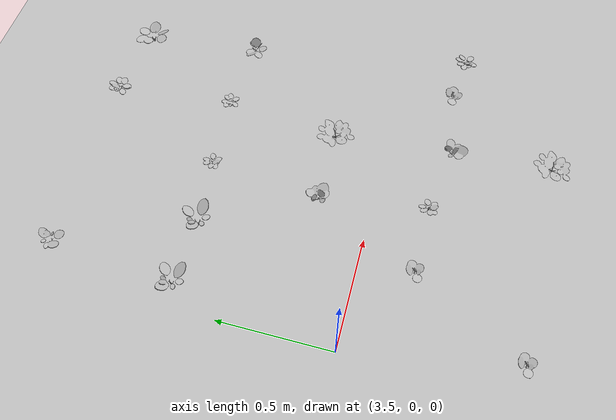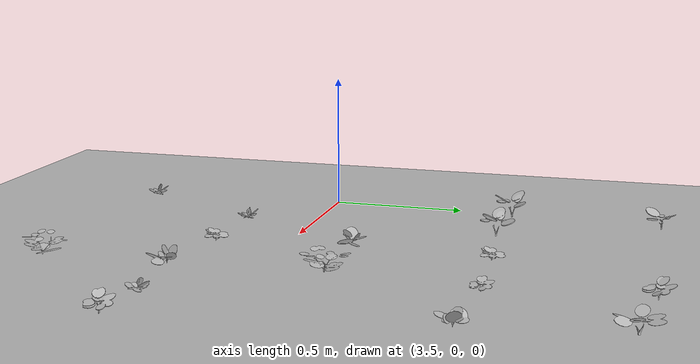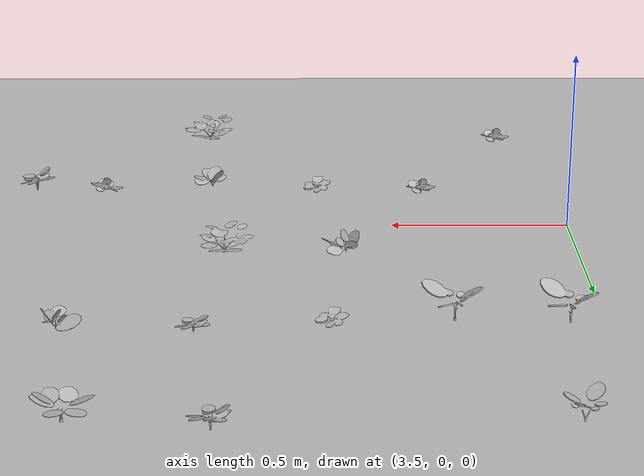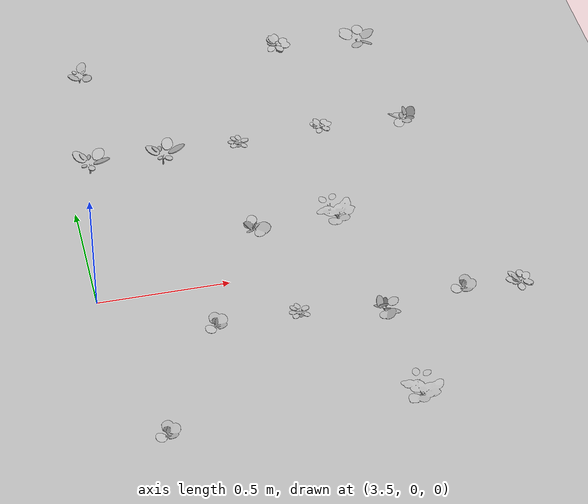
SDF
<sdf version="1.7">
 <world name="default">
  <model name="ground_plane">
   <static>1</static>
   <link name="link">
    <collision name="collision">
     <geometry><plane><normal>0 0 1</normal><size>100 100</size></plane></geometry>
     <surface>
      <contact><collide_bitmask>65535</collide_bitmask></contact>
      <friction><ode><mu>100</mu><mu2>50</mu2></ode></friction>
     </surface>
    </collision>
    <visual name="visual">
     <cast_shadows>0</cast_shadows>
     <geometry><plane><normal>0 0 1</normal><size>100 100</size></plane></geometry>
     <material>
      <ambient>0.2 0.2 0.2 1.0</ambient>
      <diffuse>0.2 0.2 0.2 1.0</diffuse>
      <specular>0.2 0.2 0.2 1.0</specular>
      <emissive>0.2 0.2 0.2 1.0</emissive>
     </material>
    </visual>
   </link>
  </model>
  <model name="ground">
   <pose>5 -0.5 0.01  3.141592654 0 0</pose>
   <static>true</static>
   <link name="body">
    <visual name="visual">
     <cast_shadows>0</cast_shadows>
     <geometry>
      <mesh><uri>file:///home/ifcosta/catkin_ws/src/cnn_line/worlds/models/ground.obj</uri></mesh>
     </geometry>
    </visual>
   </link>
  </model>
  <model name="plt_46">
   <pose>3.63 -0.722 0.0131 0.0 0.0 -0.14927</pose>
   <static>true</static>
   <link name="body">
    <visual name="visual">
     <geometry>
      <mesh><uri>file:///home/ifcosta/catkin_ws/src/cnn_line/worlds/models/plant6.obj</uri></mesh>
     </geometry>
    </visual>
   </link>
  </model>
  <model name="plt_49">
   <pose>4.54 -0.74 0.0166 0.0 0.0 -0.12963</pose>
   <static>true</static>
   <link name="body">
    <visual name="visual">
     <geometry>
      <mesh><uri>file:///home/ifcosta/catkin_ws/src/cnn_line/worlds/models/plant0.obj</uri></mesh>
     </geometry>
    </visual>
   </link>
  </model>
  <model name="plt_81">
   <pose>3.9 -0.234 0.0142 0.0 0.0 0.05486</pose>
   <static>true</static>
   <link name="body">
    <visual name="visual">
     <geometry>
      <mesh><uri>file:///home/ifcosta/catkin_ws/src/cnn_line/worlds/models/plant6.obj</uri></mesh>
     </geometry>
    </visual>
   </link>
  </model>
  <model name="plt_82">
   <pose>4.21 -0.241 0.0144 0.0 0.0 1.3264</pose>
   <static>true</static>
   <link name="body">
    <visual name="visual">
     <geometry>
      <mesh><uri>file:///home/ifcosta/catkin_ws/src/cnn_line/worlds/models/plant4.obj</uri></mesh>
     </geometry>
    </visual>
   </link>
  </model>
  <model name="plt_83">
   <pose>4.52 -0.292 0.0153 0.0 0.0 0.48448</pose>
   <static>true</static>
   <link name="body">
    <visual name="visual">
     <geometry>
      <mesh><uri>file:///home/ifcosta/catkin_ws/src/cnn_line/worlds/models/plant7.obj</uri></mesh>
     </geometry>
    </visual>
   </link>
  </model>
  <model name="plt_84">
   <pose>4.83 -0.242 0.0156 0.0 0.0 -0.48775</pose>
   <static>true</static>
   <link name="body">
    <visual name="visual">
     <geometry>
      <mesh><uri>file:///home/ifcosta/catkin_ws/src/cnn_line/worlds/models/plant6.obj</uri></mesh>
     </geometry>
    </visual>
   </link>
  </model>
  <model name="plt_85">
   <pose>5.04 -0.272 0.013 0.0 0.0 0.30895</pose>
   <static>true</static>
   <link name="body">
    <visual name="visual">
     <geometry>
      <mesh><uri>file:///home/ifcosta/catkin_ws/src/cnn_line/worlds/models/plant5.obj</uri></mesh>
     </geometry>
    </visual>
   </link>
  </model>
  <model name="plt_116">
   <pose>4.14 0.238 0.0131 0.0 0.0 1.5478</pose>
   <static>true</static>
   <link name="body">
    <visual name="visual">
     <geometry>
      <mesh><uri>file:///home/ifcosta/catkin_ws/src/cnn_line/worlds/models/plant7.obj</uri></mesh>
     </geometry>
    </visual>
   </link>
  </model>
  <model name="plt_117">
   <pose>4.47 0.24 0.0148 0.0 0.0 0.42344</pose>
   <static>true</static>
   <link name="body">
    <visual name="visual">
     <geometry>
      <mesh><uri>file:///home/ifcosta/catkin_ws/src/cnn_line/worlds/models/plant0.obj</uri></mesh>
     </geometry>
    </visual>
   </link>
  </model>
  <model name="plt_148">
   <pose>3.61 0.734 0.0126 0.0 0.0 -0.90362</pose>
   <static>true</static>
   <link name="body">
    <visual name="visual">
     <geometry>
      <mesh><uri>file:///home/ifcosta/catkin_ws/src/cnn_line/worlds/models/plant3.obj</uri></mesh>
     </geometry>
    </visual>
   </link>
  </model>
  <model name="plt_149">
   <pose>3.89 0.727 0.0139 0.0 0.0 -0.5499</pose>
   <static>true</static>
   <link name="body">
    <visual name="visual">
     <geometry>
      <mesh><uri>file:///home/ifcosta/catkin_ws/src/cnn_line/worlds/models/plant3.obj</uri></mesh>
     </geometry>
    </visual>
   </link>
  </model>
  <model name="plt_150">
   <pose>4.19 0.742 0.0145 0.0 0.0 1.1236</pose>
   <static>true</static>
   <link name="body">
    <visual name="visual">
     <geometry>
      <mesh><uri>file:///home/ifcosta/catkin_ws/src/cnn_line/worlds/models/plant4.obj</uri></mesh>
     </geometry>
    </visual>
   </link>
  </model>
  <model name="plt_151">
   <pose>4.53 0.768 0.0137 0.0 0.0 -0.018067</pose>
   <static>true</static>
   <link name="body">
    <visual name="visual">
     <geometry>
      <mesh><uri>file:///home/ifcosta/catkin_ws/src/cnn_line/worlds/models/plant4.obj</uri></mesh>
     </geometry>
    </visual>
   </link>
  </model>
  <model name="plt_152">
   <pose>4.87 0.749 0.0126 0.0 0.0 -1.5838</pose>
   <static>true</static>
   <link name="body">
    <visual name="visual">
     <geometry>
      <mesh><uri>file:///home/ifcosta/catkin_ws/src/cnn_line/worlds/models/plant7.obj</uri></mesh>
     </geometry>
    </visual>
   </link>
  </model>
  <model name="plt_182">
   <pose>3.64 1.27 0.018 0.0 0.0 0.56086</pose>
   <static>true</static>
   <link name="body">
    <visual name="visual">
     <geometry>
      <mesh><uri>file:///home/ifcosta/catkin_ws/src/cnn_line/worlds/models/plant1.obj</uri></mesh>
     </geometry>
    </visual>
   </link>
  </model>
  <model name="plt_185">
   <pose>4.47 1.3 0.0139 0.0 0.0 -0.47831</pose>
   <static>true</static>
   <link name="body">
    <visual name="visual">
     <geometry>
      <mesh><uri>file:///home/ifcosta/catkin_ws/src/cnn_line/worlds/models/plant5.obj</uri></mesh>
     </geometry>
    </visual>
   </link>
  </model>
  <model name="plt_186">
   <pose>4.81 1.26 0.0149 0.0 0.0 -0.38985</pose>
   <static>true</static>
   <link name="body">
    <visual name="visual">
     <geometry>
      <mesh><uri>file:///home/ifcosta/catkin_ws/src/cnn_line/worlds/models/plant2.obj</uri></mesh>
     </geometry>
    </visual>
   </link>
  </model>
 </world>
</sdf>
